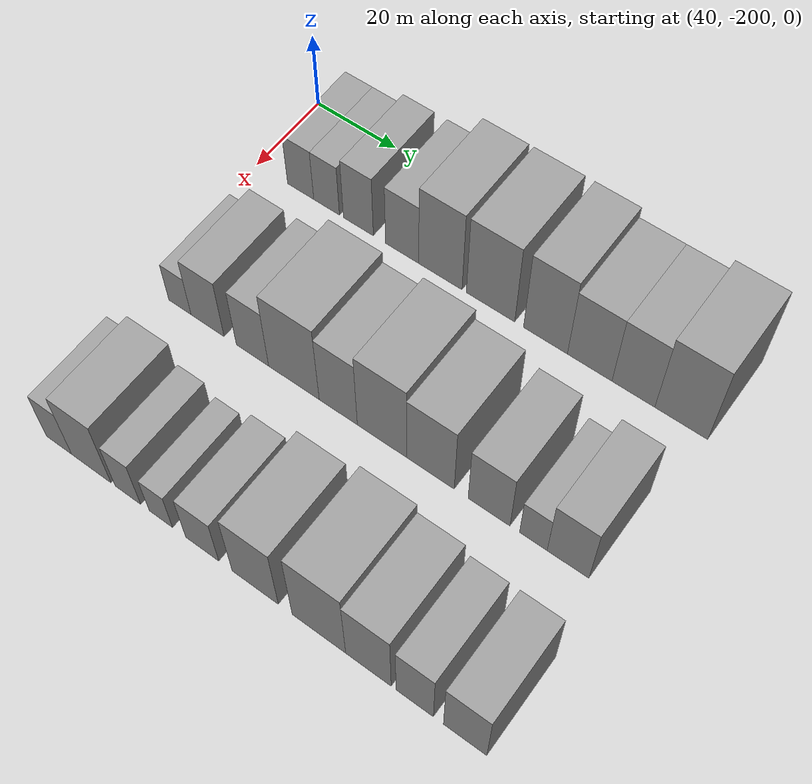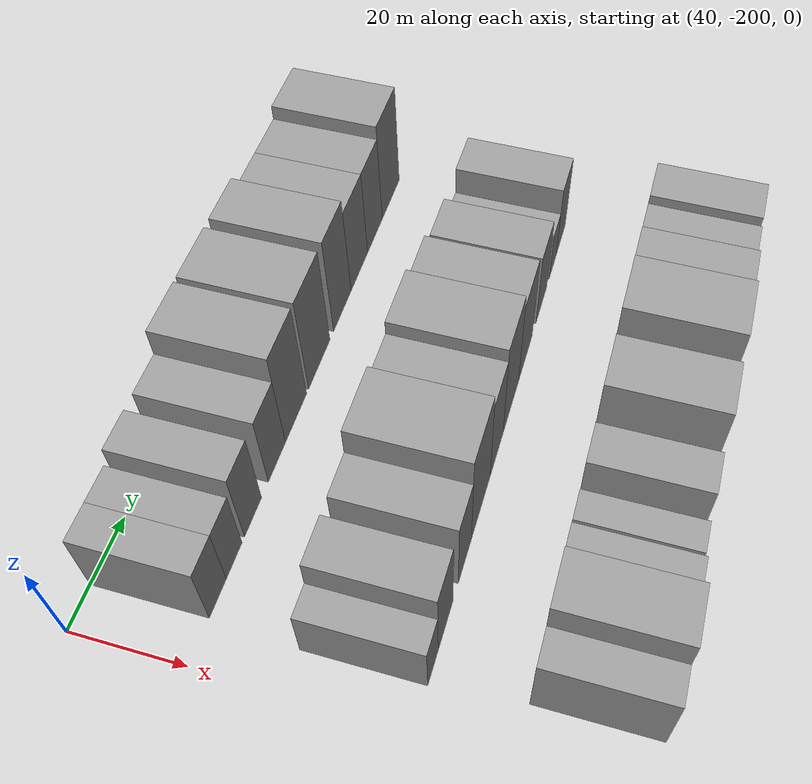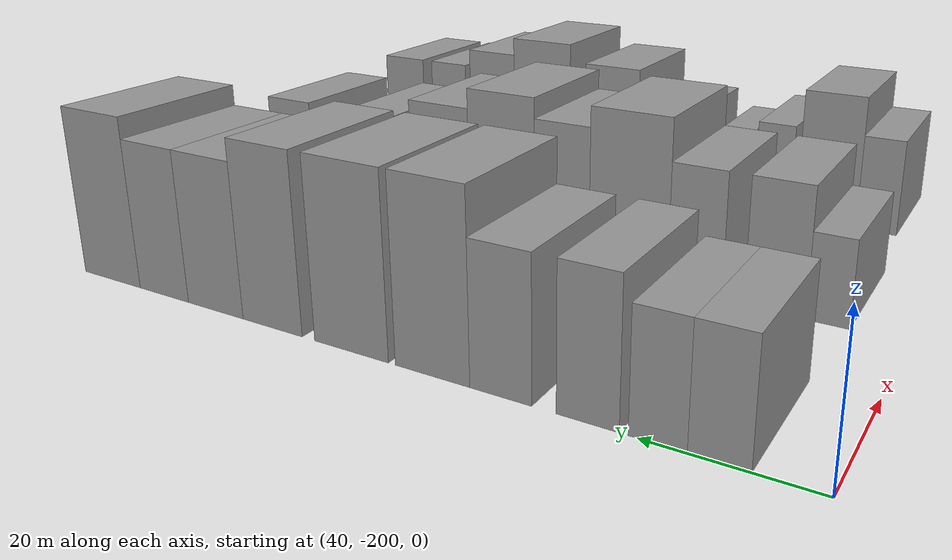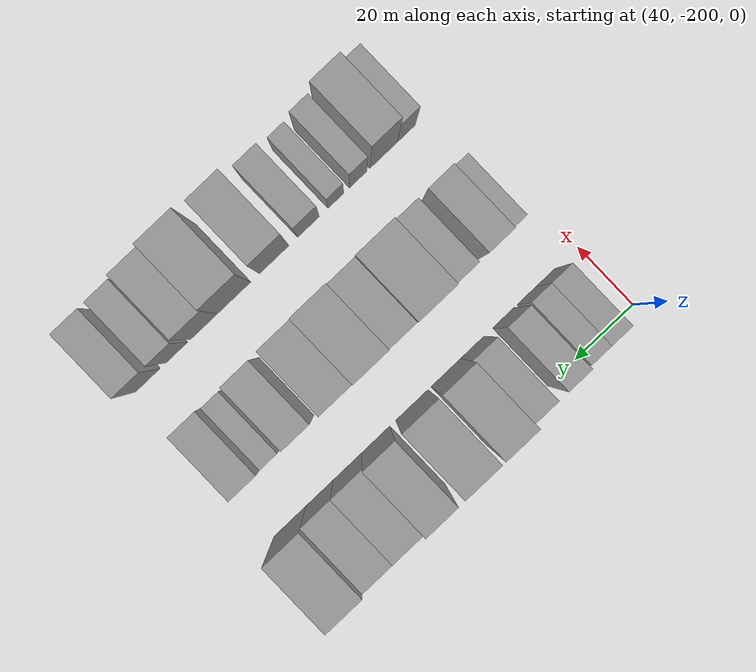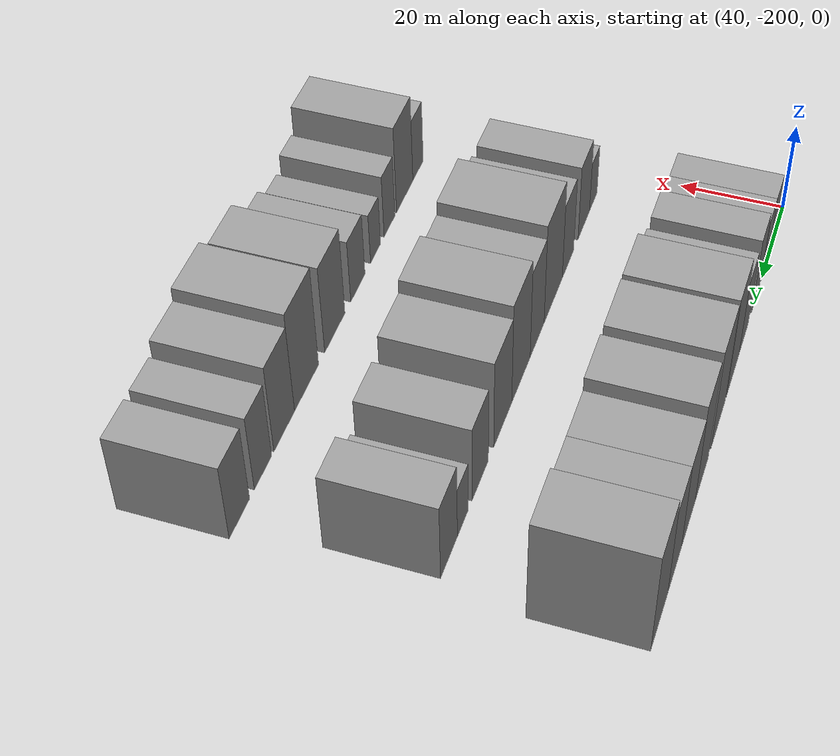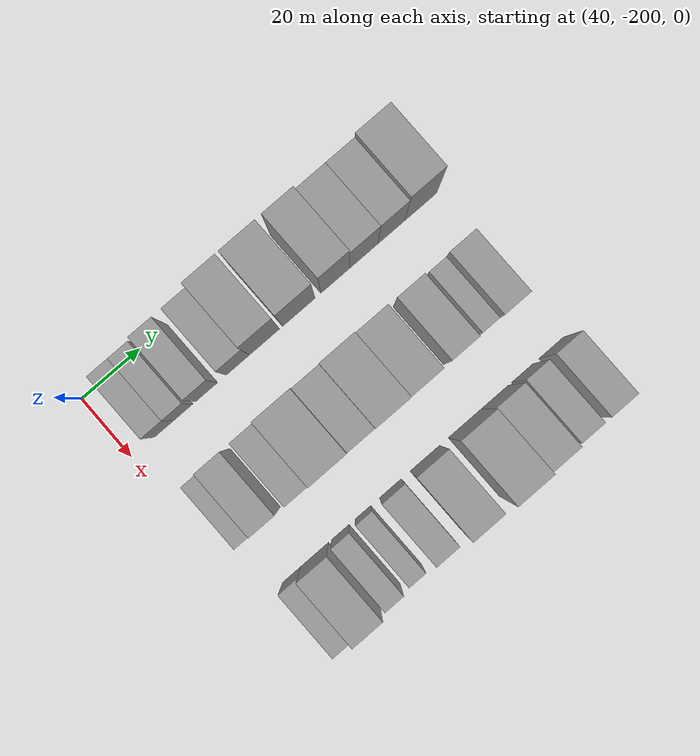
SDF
<sdf version="1.6">
 <world name="default">
  <model name="building_22">
   <static>1</static>
   <pose>50.0000 -188.7874 0 0.000000 0.000000 0.000000</pose>
   <link name="link">
    <pose>0 0 7.50 0 0 0</pose>
    <collision name="collision"><geometry><box><size>20.0000 6.6657 15.0000</size></box></geometry></collision>
    <visual name="visual">
     <cast_shadows>0</cast_shadows>
     <geometry><box><size>20.0000 6.6657 15.0000</size></box></geometry>
     <material>
      <script>
       <uri>model://grey_wall/materials/scripts</uri>
       <uri>model://grey_wall/materials/textures</uri>
       <name>vrc/grey_wall</name>
      </script>
     </material>
    </visual>
   </link>
  </model>
  <model name="building_23">
   <static>1</static>
   <pose>50.0000 -182.2172 0 0.000000 0.000000 0.000000</pose>
   <link name="link">
    <pose>0 0 7.50 0 0 0</pose>
    <collision name="collision"><geometry><box><size>20.0000 6.4747 15.0000</size></box></geometry></collision>
    <visual name="visual">
     <cast_shadows>0</cast_shadows>
     <geometry><box><size>20.0000 6.4747 15.0000</size></box></geometry>
     <material>
      <script>
       <uri>model://grey_wall/materials/scripts</uri>
       <uri>model://grey_wall/materials/textures</uri>
       <name>vrc/grey_wall</name>
      </script>
     </material>
    </visual>
   </link>
  </model>
  <model name="building_24">
   <static>1</static>
   <pose>50.0000 -174.2768 0 0.000000 0.000000 0.000000</pose>
   <link name="link">
    <pose>0 0 9.00 0 0 0</pose>
    <collision name="collision"><geometry><box><size>20.0000 7.4062 18.0000</size></box></geometry></collision>
    <visual name="visual">
     <cast_shadows>0</cast_shadows>
     <geometry><box><size>20.0000 7.4062 18.0000</size></box></geometry>
     <material>
      <script>
       <uri>model://grey_wall/materials/scripts</uri>
       <uri>model://grey_wall/materials/textures</uri>
       <name>vrc/grey_wall</name>
      </script>
     </material>
    </visual>
   </link>
  </model>
  <model name="building_25">
   <static>1</static>
   <pose>50.0000 -163.5895 0 0.000000 0.000000 0.000000</pose>
   <link name="link">
    <pose>0 0 9.00 0 0 0</pose>
    <collision name="collision"><geometry><box><size>20.0000 7.9683 18.0000</size></box></geometry></collision>
    <visual name="visual">
     <cast_shadows>0</cast_shadows>
     <geometry><box><size>20.0000 7.9683 18.0000</size></box></geometry>
     <material>
      <script>
       <uri>model://grey_wall/materials/scripts</uri>
       <uri>model://grey_wall/materials/textures</uri>
       <name>vrc/grey_wall</name>
      </script>
     </material>
    </visual>
   </link>
  </model>
  <model name="building_26">
   <static>1</static>
   <pose>50.0000 -154.4490 0 0.000000 0.000000 0.000000</pose>
   <link name="link">
    <pose>0 0 12.00 0 0 0</pose>
    <collision name="collision"><geometry><box><size>20.0000 10.3128 24.0000</size></box></geometry></collision>
    <visual name="visual">
     <cast_shadows>0</cast_shadows>
     <geometry><box><size>20.0000 10.3128 24.0000</size></box></geometry>
     <material>
      <script>
       <uri>model://grey_wall/materials/scripts</uri>
       <uri>model://grey_wall/materials/textures</uri>
       <name>vrc/grey_wall</name>
      </script>
     </material>
    </visual>
   </link>
  </model>
  <model name="building_27">
   <static>1</static>
   <pose>50.0000 -142.6936 0 0.000000 0.000000 0.000000</pose>
   <link name="link">
    <pose>0 0 12.00 0 0 0</pose>
    <collision name="collision"><geometry><box><size>20.0000 11.1979 24.0000</size></box></geometry></collision>
    <visual name="visual">
     <cast_shadows>0</cast_shadows>
     <geometry><box><size>20.0000 11.1979 24.0000</size></box></geometry>
     <material>
      <script>
       <uri>model://grey_wall/materials/scripts</uri>
       <uri>model://grey_wall/materials/textures</uri>
       <name>vrc/grey_wall</name>
      </script>
     </material>
    </visual>
   </link>
  </model>
  <model name="building_28">
   <static>1</static>
   <pose>50.0000 -130.1656 0 0.000000 0.000000 0.000000</pose>
   <link name="link">
    <pose>0 0 12.00 0 0 0</pose>
    <collision name="collision"><geometry><box><size>20.0000 9.8582 24.0000</size></box></geometry></collision>
    <visual name="visual">
     <cast_shadows>0</cast_shadows>
     <geometry><box><size>20.0000 9.8582 24.0000</size></box></geometry>
     <material>
      <script>
       <uri>model://grey_wall/materials/scripts</uri>
       <uri>model://grey_wall/materials/textures</uri>
       <name>vrc/grey_wall</name>
      </script>
     </material>
    </visual>
   </link>
  </model>
  <model name="building_29">
   <static>1</static>
   <pose>50.0000 -120.3408 0 0.000000 0.000000 0.000000</pose>
   <link name="link">
    <pose>0 0 10.50 0 0 0</pose>
    <collision name="collision"><geometry><box><size>20.0000 9.7914 21.0000</size></box></geometry></collision>
    <visual name="visual">
     <cast_shadows>0</cast_shadows>
     <geometry><box><size>20.0000 9.7914 21.0000</size></box></geometry>
     <material>
      <script>
       <uri>model://grey_wall/materials/scripts</uri>
       <uri>model://grey_wall/materials/textures</uri>
       <name>vrc/grey_wall</name>
      </script>
     </material>
    </visual>
   </link>
  </model>
  <model name="building_30">
   <static>1</static>
   <pose>50.0000 -110.8411 0 0.000000 0.000000 0.000000</pose>
   <link name="link">
    <pose>0 0 10.50 0 0 0</pose>
    <collision name="collision"><geometry><box><size>20.0000 9.2081 21.0000</size></box></geometry></collision>
    <visual name="visual">
     <cast_shadows>0</cast_shadows>
     <geometry><box><size>20.0000 9.2081 21.0000</size></box></geometry>
     <material>
      <script>
       <uri>model://grey_wall/materials/scripts</uri>
       <uri>model://grey_wall/materials/textures</uri>
       <name>vrc/grey_wall</name>
      </script>
     </material>
    </visual>
   </link>
  </model>
  <model name="building_31">
   <static>1</static>
   <pose>50.0000 -100.6707 0 0.000000 0.000000 0.000000</pose>
   <link name="link">
    <pose>0 0 12.00 0 0 0</pose>
    <collision name="collision"><geometry><box><size>20.0000 11.1326 24.0000</size></box></geometry></collision>
    <visual name="visual">
     <cast_shadows>0</cast_shadows>
     <geometry><box><size>20.0000 11.1326 24.0000</size></box></geometry>
     <material>
      <script>
       <uri>model://grey_wall/materials/scripts</uri>
       <uri>model://grey_wall/materials/textures</uri>
       <name>vrc/grey_wall</name>
      </script>
     </material>
    </visual>
   </link>
  </model>
  <model name="building_103">
   <static>1</static>
   <pose>85.0000 -190.2373 0 0.000000 0.000000 0.000000</pose>
   <link name="link">
    <pose>0 0 6.00 0 0 0</pose>
    <collision name="collision"><geometry><box><size>20.0000 5.5689 12.0000</size></box></geometry></collision>
    <visual name="visual">
     <cast_shadows>0</cast_shadows>
     <geometry><box><size>20.0000 5.5689 12.0000</size></box></geometry>
     <material>
      <script>
       <uri>model://grey_wall/materials/scripts</uri>
       <uri>model://grey_wall/materials/textures</uri>
       <name>vrc/grey_wall</name>
      </script>
     </material>
    </visual>
   </link>
  </model>
  <model name="building_104">
   <static>1</static>
   <pose>85.0000 -183.3659 0 0.000000 0.000000 0.000000</pose>
   <link name="link">
    <pose>0 0 9.00 0 0 0</pose>
    <collision name="collision"><geometry><box><size>20.0000 8.1739 18.0000</size></box></geometry></collision>
    <visual name="visual">
     <cast_shadows>0</cast_shadows>
     <geometry><box><size>20.0000 8.1739 18.0000</size></box></geometry>
     <material>
      <script>
       <uri>model://grey_wall/materials/scripts</uri>
       <uri>model://grey_wall/materials/textures</uri>
       <name>vrc/grey_wall</name>
      </script>
     </material>
    </visual>
   </link>
  </model>
  <model name="building_105">
   <static>1</static>
   <pose>85.0000 -172.3877 0 0.000000 0.000000 0.000000</pose>
   <link name="link">
    <pose>0 0 9.00 0 0 0</pose>
    <collision name="collision"><geometry><box><size>20.0000 7.7824 18.0000</size></box></geometry></collision>
    <visual name="visual">
     <cast_shadows>0</cast_shadows>
     <geometry><box><size>20.0000 7.7824 18.0000</size></box></geometry>
     <material>
      <script>
       <uri>model://grey_wall/materials/scripts</uri>
       <uri>model://grey_wall/materials/textures</uri>
       <name>vrc/grey_wall</name>
      </script>
     </material>
    </visual>
   </link>
  </model>
  <model name="building_106">
   <static>1</static>
   <pose>85.0000 -162.5297 0 0.000000 0.000000 0.000000</pose>
   <link name="link">
    <pose>0 0 12.00 0 0 0</pose>
    <collision name="collision"><geometry><box><size>20.0000 11.9335 24.0000</size></box></geometry></collision>
    <visual name="visual">
     <cast_shadows>0</cast_shadows>
     <geometry><box><size>20.0000 11.9335 24.0000</size></box></geometry>
     <material>
      <script>
       <uri>model://grey_wall/materials/scripts</uri>
       <uri>model://grey_wall/materials/textures</uri>
       <name>vrc/grey_wall</name>
      </script>
     </material>
    </visual>
   </link>
  </model>
  <model name="building_107">
   <static>1</static>
   <pose>85.0000 -152.1764 0 0.000000 0.000000 0.000000</pose>
   <link name="link">
    <pose>0 0 10.50 0 0 0</pose>
    <collision name="collision"><geometry><box><size>20.0000 8.7731 21.0000</size></box></geometry></collision>
    <visual name="visual">
     <cast_shadows>0</cast_shadows>
     <geometry><box><size>20.0000 8.7731 21.0000</size></box></geometry>
     <material>
      <script>
       <uri>model://grey_wall/materials/scripts</uri>
       <uri>model://grey_wall/materials/textures</uri>
       <name>vrc/grey_wall</name>
      </script>
     </material>
    </visual>
   </link>
  </model>
  <model name="building_108">
   <static>1</static>
   <pose>85.0000 -142.2412 0 0.000000 0.000000 0.000000</pose>
   <link name="link">
    <pose>0 0 12.00 0 0 0</pose>
    <collision name="collision"><geometry><box><size>20.0000 11.0973 24.0000</size></box></geometry></collision>
    <visual name="visual">
     <cast_shadows>0</cast_shadows>
     <geometry><box><size>20.0000 11.0973 24.0000</size></box></geometry>
     <material>
      <script>
       <uri>model://grey_wall/materials/scripts</uri>
       <uri>model://grey_wall/materials/textures</uri>
       <name>vrc/grey_wall</name>
      </script>
     </material>
    </visual>
   </link>
  </model>
  <model name="building_109">
   <static>1</static>
   <pose>85.0000 -131.4777 0 0.000000 0.000000 0.000000</pose>
   <link name="link">
    <pose>0 0 10.50 0 0 0</pose>
    <collision name="collision"><geometry><box><size>20.0000 10.4296 21.0000</size></box></geometry></collision>
    <visual name="visual">
     <cast_shadows>0</cast_shadows>
     <geometry><box><size>20.0000 10.4296 21.0000</size></box></geometry>
     <material>
      <script>
       <uri>model://grey_wall/materials/scripts</uri>
       <uri>model://grey_wall/materials/textures</uri>
       <name>vrc/grey_wall</name>
      </script>
     </material>
    </visual>
   </link>
  </model>
  <model name="building_110">
   <static>1</static>
   <pose>85.0000 -118.8070 0 0.000000 0.000000 0.000000</pose>
   <link name="link">
    <pose>0 0 9.00 0 0 0</pose>
    <collision name="collision"><geometry><box><size>20.0000 8.9118 18.0000</size></box></geometry></collision>
    <visual name="visual">
     <cast_shadows>0</cast_shadows>
     <geometry><box><size>20.0000 8.9118 18.0000</size></box></geometry>
     <material>
      <script>
       <uri>model://grey_wall/materials/scripts</uri>
       <uri>model://grey_wall/materials/textures</uri>
       <name>vrc/grey_wall</name>
      </script>
     </material>
    </visual>
   </link>
  </model>
  <model name="building_111">
   <static>1</static>
   <pose>85.0000 -109.4890 0 0.000000 0.000000 0.000000</pose>
   <link name="link">
    <pose>0 0 6.00 0 0 0</pose>
    <collision name="collision"><geometry><box><size>20.0000 5.7243 12.0000</size></box></geometry></collision>
    <visual name="visual">
     <cast_shadows>0</cast_shadows>
     <geometry><box><size>20.0000 5.7243 12.0000</size></box></geometry>
     <material>
      <script>
       <uri>model://grey_wall/materials/scripts</uri>
       <uri>model://grey_wall/materials/textures</uri>
       <name>vrc/grey_wall</name>
      </script>
     </material>
    </visual>
   </link>
  </model>
  <model name="building_112">
   <static>1</static>
   <pose>85.0000 -102.3481 0 0.000000 0.000000 0.000000</pose>
   <link name="link">
    <pose>0 0 9.00 0 0 0</pose>
    <collision name="collision"><geometry><box><size>20.0000 8.5574 18.0000</size></box></geometry></collision>
    <visual name="visual">
     <cast_shadows>0</cast_shadows>
     <geometry><box><size>20.0000 8.5574 18.0000</size></box></geometry>
     <material>
      <script>
       <uri>model://grey_wall/materials/scripts</uri>
       <uri>model://grey_wall/materials/textures</uri>
       <name>vrc/grey_wall</name>
      </script>
     </material>
    </visual>
   </link>
  </model>
  <model name="building_187">
   <static>1</static>
   <pose>120.0000 -188.4807 0 0.000000 0.000000 0.000000</pose>
   <link name="link">
    <pose>0 0 7.50 0 0 0</pose>
    <collision name="collision"><geometry><box><size>20.0000 6.1618 15.0000</size></box></geometry></collision>
    <visual name="visual">
     <cast_shadows>0</cast_shadows>
     <geometry><box><size>20.0000 6.1618 15.0000</size></box></geometry>
     <material>
      <script>
       <uri>model://grey_wall/materials/scripts</uri>
       <uri>model://grey_wall/materials/textures</uri>
       <name>vrc/grey_wall</name>
      </script>
     </material>
    </visual>
   </link>
  </model>
  <model name="building_188">
   <static>1</static>
   <pose>120.0000 -180.6556 0 0.000000 0.000000 0.000000</pose>
   <link name="link">
    <pose>0 0 10.50 0 0 0</pose>
    <collision name="collision"><geometry><box><size>20.0000 9.4883 21.0000</size></box></geometry></collision>
    <visual name="visual">
     <cast_shadows>0</cast_shadows>
     <geometry><box><size>20.0000 9.4883 21.0000</size></box></geometry>
     <material>
      <script>
       <uri>model://grey_wall/materials/scripts</uri>
       <uri>model://grey_wall/materials/textures</uri>
       <name>vrc/grey_wall</name>
      </script>
     </material>
    </visual>
   </link>
  </model>
  <model name="building_189">
   <static>1</static>
   <pose>120.0000 -171.9056 0 0.000000 0.000000 0.000000</pose>
   <link name="link">
    <pose>0 0 7.50 0 0 0</pose>
    <collision name="collision"><geometry><box><size>20.0000 6.0119 15.0000</size></box></geometry></collision>
    <visual name="visual">
     <cast_shadows>0</cast_shadows>
     <geometry><box><size>20.0000 6.0119 15.0000</size></box></geometry>
     <material>
      <script>
       <uri>model://grey_wall/materials/scripts</uri>
       <uri>model://grey_wall/materials/textures</uri>
       <name>vrc/grey_wall</name>
      </script>
     </material>
    </visual>
   </link>
  </model>
  <model name="building_190">
   <static>1</static>
   <pose>120.0000 -164.1925 0 0.000000 0.000000 0.000000</pose>
   <link name="link">
    <pose>0 0 6.00 0 0 0</pose>
    <collision name="collision"><geometry><box><size>20.0000 5.4143 12.0000</size></box></geometry></collision>
    <visual name="visual">
     <cast_shadows>0</cast_shadows>
     <geometry><box><size>20.0000 5.4143 12.0000</size></box></geometry>
     <material>
      <script>
       <uri>model://grey_wall/materials/scripts</uri>
       <uri>model://grey_wall/materials/textures</uri>
       <name>vrc/grey_wall</name>
      </script>
     </material>
    </visual>
   </link>
  </model>
  <model name="building_191">
   <static>1</static>
   <pose>120.0000 -154.7398 0 0.000000 0.000000 0.000000</pose>
   <link name="link">
    <pose>0 0 7.50 0 0 0</pose>
    <collision name="collision"><geometry><box><size>20.0000 7.4911 15.0000</size></box></geometry></collision>
    <visual name="visual">
     <cast_shadows>0</cast_shadows>
     <geometry><box><size>20.0000 7.4911 15.0000</size></box></geometry>
     <material>
      <script>
       <uri>model://grey_wall/materials/scripts</uri>
       <uri>model://grey_wall/materials/textures</uri>
       <name>vrc/grey_wall</name>
      </script>
     </material>
    </visual>
   </link>
  </model>
  <model name="building_192">
   <static>1</static>
   <pose>120.0000 -142.9219 0 0.000000 0.000000 0.000000</pose>
   <link name="link">
    <pose>0 0 10.50 0 0 0</pose>
    <collision name="collision"><geometry><box><size>20.0000 10.1447 21.0000</size></box></geometry></collision>
    <visual name="visual">
     <cast_shadows>0</cast_shadows>
     <geometry><box><size>20.0000 10.1447 21.0000</size></box></geometry>
     <material>
      <script>
       <uri>model://grey_wall/materials/scripts</uri>
       <uri>model://grey_wall/materials/textures</uri>
       <name>vrc/grey_wall</name>
      </script>
     </material>
    </visual>
   </link>
  </model>
  <model name="building_193">
   <static>1</static>
   <pose>120.0000 -129.1635 0 0.000000 0.000000 0.000000</pose>
   <link name="link">
    <pose>0 0 12.00 0 0 0</pose>
    <collision name="collision"><geometry><box><size>20.0000 11.3720 24.0000</size></box></geometry></collision>
    <visual name="visual">
     <cast_shadows>0</cast_shadows>
     <geometry><box><size>20.0000 11.3720 24.0000</size></box></geometry>
     <material>
      <script>
       <uri>model://grey_wall/materials/scripts</uri>
       <uri>model://grey_wall/materials/textures</uri>
       <name>vrc/grey_wall</name>
      </script>
     </material>
    </visual>
   </link>
  </model>
  <model name="building_194">
   <static>1</static>
   <pose>120.0000 -118.7780 0 0.000000 0.000000 0.000000</pose>
   <link name="link">
    <pose>0 0 10.50 0 0 0</pose>
    <collision name="collision"><geometry><box><size>20.0000 9.3990 21.0000</size></box></geometry></collision>
    <visual name="visual">
     <cast_shadows>0</cast_shadows>
     <geometry><box><size>20.0000 9.3990 21.0000</size></box></geometry>
     <material>
      <script>
       <uri>model://grey_wall/materials/scripts</uri>
       <uri>model://grey_wall/materials/textures</uri>
       <name>vrc/grey_wall</name>
      </script>
     </material>
    </visual>
   </link>
  </model>
  <model name="building_195">
   <static>1</static>
   <pose>120.0000 -109.3144 0 0.000000 0.000000 0.000000</pose>
   <link name="link">
    <pose>0 0 9.00 0 0 0</pose>
    <collision name="collision"><geometry><box><size>20.0000 7.5283 18.0000</size></box></geometry></collision>
    <visual name="visual">
     <cast_shadows>0</cast_shadows>
     <geometry><box><size>20.0000 7.5283 18.0000</size></box></geometry>
     <material>
      <script>
       <uri>model://grey_wall/materials/scripts</uri>
       <uri>model://grey_wall/materials/textures</uri>
       <name>vrc/grey_wall</name>
      </script>
     </material>
    </visual>
   </link>
  </model>
  <model name="building_196">
   <static>1</static>
   <pose>120.0000 -99.2833 0 0.000000 0.000000 0.000000</pose>
   <link name="link">
    <pose>0 0 9.00 0 0 0</pose>
    <collision name="collision"><geometry><box><size>20.0000 8.5339 18.0000</size></box></geometry></collision>
    <visual name="visual">
     <cast_shadows>0</cast_shadows>
     <geometry><box><size>20.0000 8.5339 18.0000</size></box></geometry>
     <material>
      <script>
       <uri>model://grey_wall/materials/scripts</uri>
       <uri>model://grey_wall/materials/textures</uri>
       <name>vrc/grey_wall</name>
      </script>
     </material>
    </visual>
   </link>
  </model>
 </world>
</sdf>
